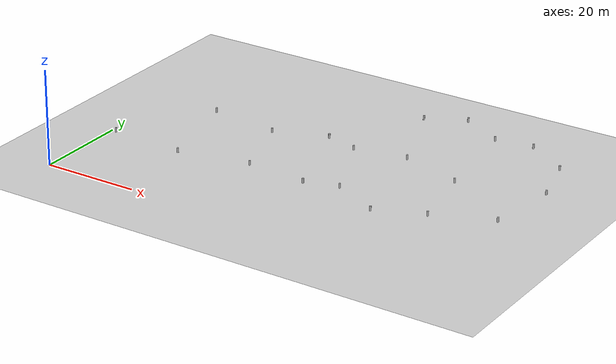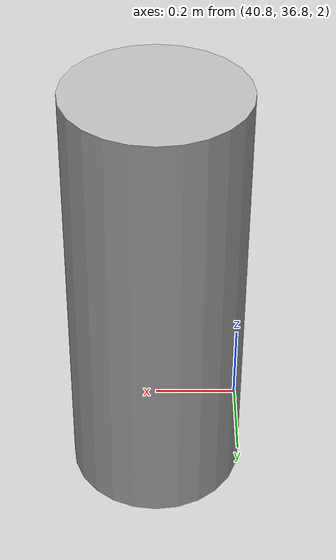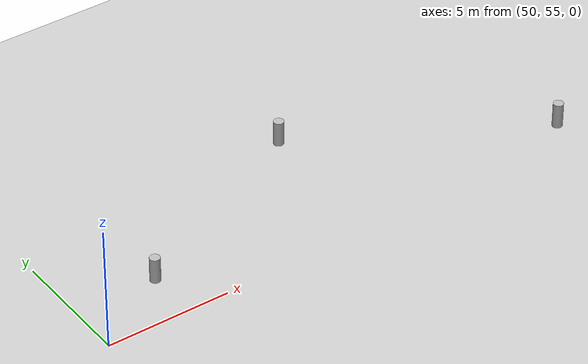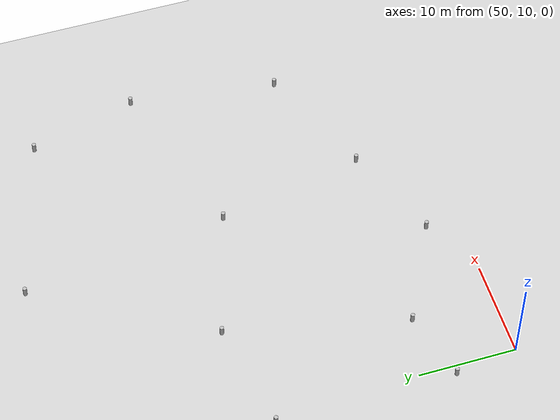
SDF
<?xml version="1.0" ?>
<sdf version="1.5">
  <world name="Scenario 5">
    <include>
      <uri>model://ground_plane</uri>
    </include>
    <include>
      <uri>model://sun</uri>
    </include>
    <include>
      <uri>model://reflector_1</uri>
      <name>reflector</name>
      <pose>4 16 0 0 0 0</pose>
    </include>
    <include>
      <uri>model://reflector_1</uri>
      <name>reflector</name>
      <pose>20 15 0 0 0 0</pose>
    </include>
    <include>
      <uri>model://reflector_1</uri>
      <name>reflector</name>
      <pose>35 18 0 0 0 0</pose>
    </include>
    <include>
      <uri>model://reflector_1</uri>
      <name>reflector</name>
      <pose>48 17 0 0 0 0</pose>
    </include>
    <include>
      <uri>model://reflector_1</uri>
      <name>reflector</name>
      <pose>55 19 0 0 0 0</pose>
    </include>
    <include>
      <uri>model://reflector_1</uri>
      <name>reflector</name>
      <pose>65 14 0 0 0 0</pose>
    </include>
    <include>
      <uri>model://reflector_1</uri>
      <name>reflector</name>
      <pose>75 18 0 0 0 0</pose>
    </include>
    <include>
      <uri>model://reflector_1</uri>
      <name>reflector</name>
      <pose>15 35 0 0 0 0</pose>
    </include>
    <include>
      <uri>model://reflector_1</uri>
      <name>reflector</name>
      <pose>30 33 0 0 0 0</pose>
    </include>
    <include>
      <uri>model://reflector_1</uri>
      <name>reflector</name>
      <pose>41 37 0 0 0 0</pose>
    </include>
    <include>
      <uri>model://reflector_1</uri>
      <name>reflector</name>
      <pose>48 35 0 0 0 0</pose>
    </include>
    <include>
      <uri>model://reflector_1</uri>
      <name>reflector</name>
      <pose>59 37 0 0 0 0</pose>
    </include>
    <include>
      <uri>model://reflector_1</uri>
      <name>reflector</name>
      <pose>72 33 0 0 0 0</pose>
    </include>
    <include>
      <uri>model://reflector_1</uri>
      <name>reflector</name>
      <pose>87 23 0 0 0 0</pose>
    </include>
    <include>
      <uri>model://reflector_1</uri>
      <name>reflector</name>
      <pose>89 38 0 0 0 0</pose>
    </include>
    <include>
      <uri>model://reflector_1</uri>
      <name>reflector</name>
      <pose>86 49 0 0 0 0</pose>
    </include>
    <include>
      <uri>model://reflector_1</uri>
      <name>reflector</name>
      <pose>77 55 0 0 0 0</pose>
    </include>
    <include>
      <uri>model://reflector_1</uri>
      <name>reflector</name>
      <pose>69 54 0 0 0 0</pose>
    </include>
    <include>
      <uri>model://reflector_1</uri>
      <name>reflector</name>
      <pose>60 59 0 0 0 0</pose>
    </include>
    <include>
      <uri>model://reflector_1</uri>
      <name>reflector</name>
      <pose>52 55 0 0 0 0</pose>
    </include>
  </world>
</sdf>

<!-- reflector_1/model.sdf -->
<sdf version="1.6">
  <model name="reflector_1">
    <static>true</static>
    <link name="link">
      <pose>0 0 2.5 0 0 0</pose>
      <collision name="collision">
        <laser_retro>200</laser_retro>
        <geometry>
          <cylinder>
            <radius>0.2</radius>
            <length>1</length>
          </cylinder>
        </geometry>
      </collision>

      <visual name="visual">
        <geometry>
          <cylinder>
            <radius>0.2</radius>
            <length>1</length>
          </cylinder>
        </geometry>
      </visual>
    </link>
  </model>
</sdf>
